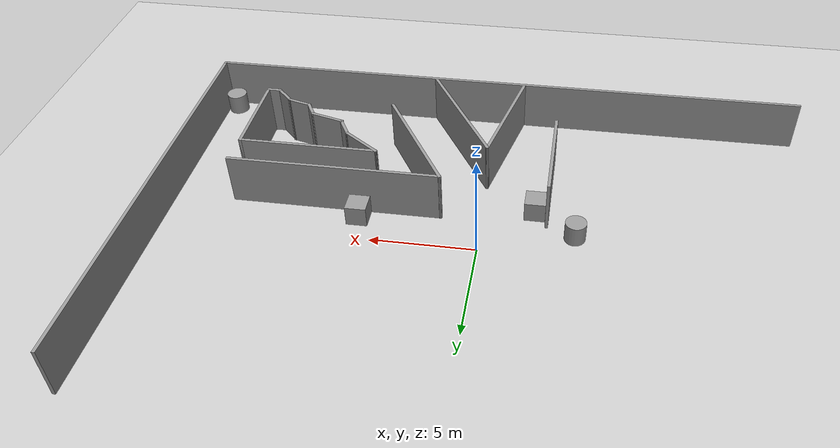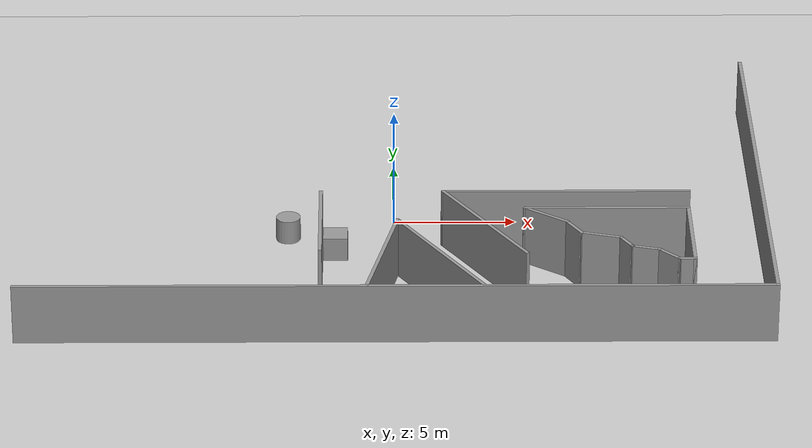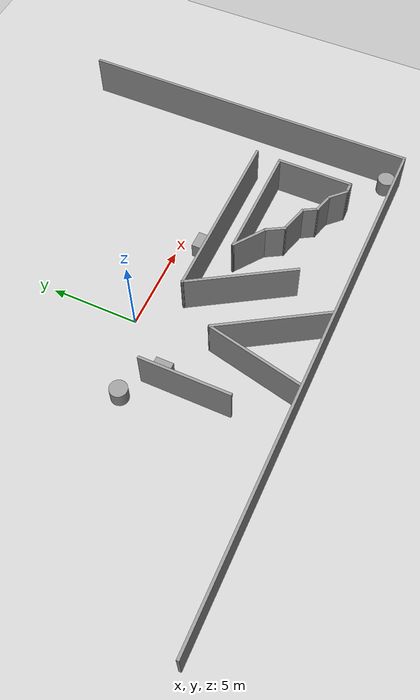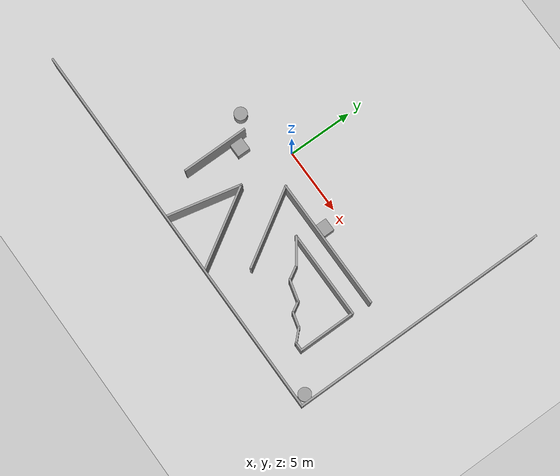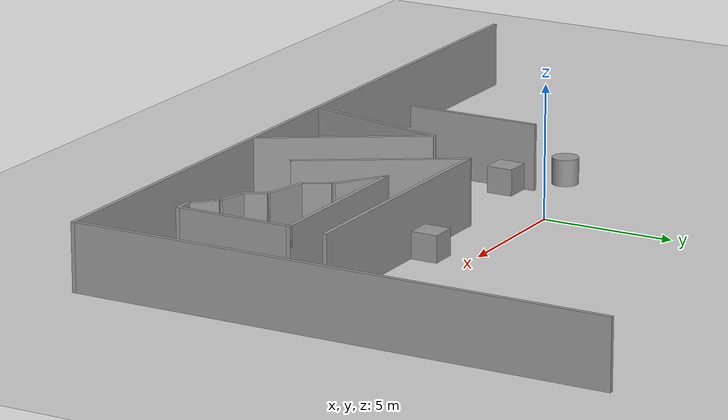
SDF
<sdf version="1.7">
 <world name="default">
  <model name="ground_plane">
   <static>1</static>
   <link name="link">
    <collision name="collision">
     <geometry><plane><normal>0 0 1</normal><size>100 100</size></plane></geometry>
     <surface>
      <contact><collide_bitmask>65535</collide_bitmask></contact>
      <friction><ode><mu>100</mu><mu2>50</mu2></ode></friction>
     </surface>
    </collision>
    <visual name="visual">
     <cast_shadows>0</cast_shadows>
     <geometry><plane><normal>0 0 1</normal><size>100 100</size></plane></geometry>
     <material>
      <script><uri>file://media/materials/scripts/gazebo.material</uri><name>Gazebo/Grey</name></script>
     </material>
    </visual>
   </link>
  </model>
  <model name="Untitled_0">
   <link name="Wall_11">
    <pose>14.9718 -0.004264 0 0 0 -1.5708</pose>
    <visual name="Wall_11_Visual">
     <pose>0 0 1.25 0 -0 0</pose>
     <geometry><box><size>20.15 0.15 2.5</size></box></geometry>
     <material>
      <script><uri>file://media/materials/scripts/gazebo.material</uri><name>Gazebo/Grey</name></script>
      <ambient>1 1 1 1</ambient>
      <shader type="pixel"/>
     </material>
     <meta><layer>0</layer></meta>
    </visual>
    <collision name="Wall_11_Collision">
     <pose>0 0 1.25 0 -0 0</pose>
     <geometry><box><size>20.15 0.15 2.5</size></box></geometry>
     <surface>
      <friction>
       <ode><mu>1</mu><mu2>1</mu2><fdir1>0 0 0</fdir1><slip1>0</slip1><slip2>0</slip2></ode>
       <torsional>
        <coefficient>1</coefficient>
        <patch_radius>0</patch_radius>
        <surface_radius>0</surface_radius>
        <use_patch_radius>1</use_patch_radius>
        <ode><slip>0</slip></ode>
       </torsional>
      </friction>
      <bounce><restitution_coefficient>0</restitution_coefficient><threshold>1e+06</threshold></bounce>
      <contact>
       <collide_without_contact>0</collide_without_contact>
       <collide_without_contact_bitmask>1</collide_without_contact_bitmask>
       <collide_bitmask>1</collide_bitmask>
       <ode>
        <soft_cfm>0</soft_cfm>
        <soft_erp>0.2</soft_erp>
        <kp>1e+13</kp>
        <kd>1</kd>
        <max_vel>0.01</max_vel>
        <min_depth>0</min_depth>
       </ode>
       <bullet>
        <split_impulse>1</split_impulse>
        <split_impulse_penetration_threshold>-0.01</split_impulse_penetration_threshold>
        <soft_cfm>0</soft_cfm>
        <soft_erp>0.2</soft_erp>
        <kp>1e+13</kp>
        <kd>1</kd>
       </bullet>
      </contact>
     </surface>
    </collision>
   </link>
   <link name="Wall_13">
    <pose>-3.02816 -4.50426 0 0 0 -1.5708</pose>
    <visual name="Wall_13_Visual">
     <pose>0 0 1.25 0 -0 0</pose>
     <geometry><box><size>5.15 0.15 2.5</size></box></geometry>
     <material>
      <script><uri>file://media/materials/scripts/gazebo.material</uri><name>Gazebo/Grey</name></script>
      <ambient>1 1 1 1</ambient>
      <shader type="pixel"/>
     </material>
     <meta><layer>0</layer></meta>
    </visual>
    <collision name="Wall_13_Collision">
     <pose>0 0 1.25 0 -0 0</pose>
     <geometry><box><size>5.15 0.15 2.5</size></box></geometry>
     <surface>
      <friction>
       <ode><mu>1</mu><mu2>1</mu2><fdir1>0 0 0</fdir1><slip1>0</slip1><slip2>0</slip2></ode>
       <torsional>
        <coefficient>1</coefficient>
        <patch_radius>0</patch_radius>
        <surface_radius>0</surface_radius>
        <use_patch_radius>1</use_patch_radius>
        <ode><slip>0</slip></ode>
       </torsional>
      </friction>
      <bounce><restitution_coefficient>0</restitution_coefficient><threshold>1e+06</threshold></bounce>
      <contact>
       <collide_without_contact>0</collide_without_contact>
       <collide_without_contact_bitmask>1</collide_without_contact_bitmask>
       <collide_bitmask>1</collide_bitmask>
       <ode>
        <soft_cfm>0</soft_cfm>
        <soft_erp>0.2</soft_erp>
        <kp>1e+13</kp>
        <kd>1</kd>
        <max_vel>0.01</max_vel>
        <min_depth>0</min_depth>
       </ode>
       <bullet>
        <split_impulse>1</split_impulse>
        <split_impulse_penetration_threshold>-0.01</split_impulse_penetration_threshold>
        <soft_cfm>0</soft_cfm>
        <soft_erp>0.2</soft_erp>
        <kp>1e+13</kp>
        <kd>1</kd>
       </bullet>
      </contact>
     </surface>
    </collision>
   </link>
   <link name="Wall_5">
    <pose>-0.028156 -10.0043 0 0 -0 0</pose>
    <visual name="Wall_5_Visual">
     <pose>0 0 1.25 0 -0 0</pose>
     <geometry><box><size>30.15 0.15 2.5</size></box></geometry>
     <material>
      <script><uri>file://media/materials/scripts/gazebo.material</uri><name>Gazebo/Grey</name></script>
      <ambient>1 1 1 1</ambient>
      <shader type="pixel"/>
     </material>
     <meta><layer>0</layer></meta>
    </visual>
    <collision name="Wall_5_Collision">
     <pose>0 0 1.25 0 -0 0</pose>
     <geometry><box><size>30.15 0.15 2.5</size></box></geometry>
     <surface>
      <friction>
       <ode><mu>1</mu><mu2>1</mu2><fdir1>0 0 0</fdir1><slip1>0</slip1><slip2>0</slip2></ode>
       <torsional>
        <coefficient>1</coefficient>
        <patch_radius>0</patch_radius>
        <surface_radius>0</surface_radius>
        <use_patch_radius>1</use_patch_radius>
        <ode><slip>0</slip></ode>
       </torsional>
      </friction>
      <bounce><restitution_coefficient>0</restitution_coefficient><threshold>1e+06</threshold></bounce>
      <contact>
       <collide_without_contact>0</collide_without_contact>
       <collide_without_contact_bitmask>1</collide_without_contact_bitmask>
       <collide_bitmask>1</collide_bitmask>
       <ode>
        <soft_cfm>0</soft_cfm>
        <soft_erp>0.2</soft_erp>
        <kp>1e+13</kp>
        <kd>1</kd>
        <max_vel>0.01</max_vel>
        <min_depth>0</min_depth>
       </ode>
       <bullet>
        <split_impulse>1</split_impulse>
        <split_impulse_penetration_threshold>-0.01</split_impulse_penetration_threshold>
        <soft_cfm>0</soft_cfm>
        <soft_erp>0.2</soft_erp>
        <kp>1e+13</kp>
        <kd>1</kd>
       </bullet>
      </contact>
     </surface>
    </collision>
   </link>
   <link name="Wall_68">
    <pose>3.59331 -4.64922 0 0 0 -1.02084</pose>
    <visual name="Wall_68_Visual">
     <pose>0 0 1.25 0 -0 0</pose>
     <geometry><box><size>6.35482 0.15 2.5</size></box></geometry>
     <material>
      <script><uri>file://media/materials/scripts/gazebo.material</uri><name>Gazebo/Grey</name></script>
      <ambient>1 1 1 1</ambient>
      <shader type="pixel"/>
     </material>
     <meta><layer>0</layer></meta>
    </visual>
    <collision name="Wall_68_Collision">
     <pose>0 0 1.25 0 -0 0</pose>
     <geometry><box><size>6.35482 0.15 2.5</size></box></geometry>
     <surface>
      <friction>
       <ode><mu>1</mu><mu2>1</mu2><fdir1>0 0 0</fdir1><slip1>0</slip1><slip2>0</slip2></ode>
       <torsional>
        <coefficient>1</coefficient>
        <patch_radius>0</patch_radius>
        <surface_radius>0</surface_radius>
        <use_patch_radius>1</use_patch_radius>
        <ode><slip>0</slip></ode>
       </torsional>
      </friction>
      <bounce><restitution_coefficient>0</restitution_coefficient><threshold>1e+06</threshold></bounce>
      <contact>
       <collide_without_contact>0</collide_without_contact>
       <collide_without_contact_bitmask>1</collide_without_contact_bitmask>
       <collide_bitmask>1</collide_bitmask>
       <ode>
        <soft_cfm>0</soft_cfm>
        <soft_erp>0.2</soft_erp>
        <kp>1e+13</kp>
        <kd>1</kd>
        <max_vel>0.01</max_vel>
        <min_depth>0</min_depth>
       </ode>
       <bullet>
        <split_impulse>1</split_impulse>
        <split_impulse_penetration_threshold>-0.01</split_impulse_penetration_threshold>
        <soft_cfm>0</soft_cfm>
        <soft_erp>0.2</soft_erp>
        <kp>1e+13</kp>
        <kd>1</kd>
       </bullet>
      </contact>
     </surface>
    </collision>
   </link>
   <link name="Wall_70">
    <pose>6.97184 -2.00426 0 0 -0 0</pose>
    <visual name="Wall_70_Visual">
     <pose>0 0 1.25 0 -0 0</pose>
     <geometry><box><size>10.15 0.15 2.5</size></box></geometry>
     <material>
      <script><uri>file://media/materials/scripts/gazebo.material</uri><name>Gazebo/Grey</name></script>
      <ambient>1 1 1 1</ambient>
      <shader type="pixel"/>
     </material>
     <meta><layer>0</layer></meta>
    </visual>
    <collision name="Wall_70_Collision">
     <pose>0 0 1.25 0 -0 0</pose>
     <geometry><box><size>10.15 0.15 2.5</size></box></geometry>
     <surface>
      <friction>
       <ode><mu>1</mu><mu2>1</mu2><fdir1>0 0 0</fdir1><slip1>0</slip1><slip2>0</slip2></ode>
       <torsional>
        <coefficient>1</coefficient>
        <patch_radius>0</patch_radius>
        <surface_radius>0</surface_radius>
        <use_patch_radius>1</use_patch_radius>
        <ode><slip>0</slip></ode>
       </torsional>
      </friction>
      <bounce><restitution_coefficient>0</restitution_coefficient><threshold>1e+06</threshold></bounce>
      <contact>
       <collide_without_contact>0</collide_without_contact>
       <collide_without_contact_bitmask>1</collide_without_contact_bitmask>
       <collide_bitmask>1</collide_bitmask>
       <ode>
        <soft_cfm>0</soft_cfm>
        <soft_erp>0.2</soft_erp>
        <kp>1e+13</kp>
        <kd>1</kd>
        <max_vel>0.01</max_vel>
        <min_depth>0</min_depth>
       </ode>
       <bullet>
        <split_impulse>1</split_impulse>
        <split_impulse_penetration_threshold>-0.01</split_impulse_penetration_threshold>
        <soft_cfm>0</soft_cfm>
        <soft_erp>0.2</soft_erp>
        <kp>1e+13</kp>
        <kd>1</kd>
       </bullet>
      </contact>
     </surface>
    </collision>
   </link>
   <link name="Wall_72">
    <pose>8.57115 -3.46947 0 0 -0 0</pose>
    <visual name="Wall_72_Visual">
     <pose>0 0 1.25 0 -0 0</pose>
     <geometry><box><size>6.75 0.15 2.5</size></box></geometry>
     <material>
      <script><uri>file://media/materials/scripts/gazebo.material</uri><name>Gazebo/Grey</name></script>
      <ambient>1 1 1 1</ambient>
      <shader type="pixel"/>
     </material>
     <meta><layer>0</layer></meta>
    </visual>
    <collision name="Wall_72_Collision">
     <pose>0 0 1.25 0 -0 0</pose>
     <geometry><box><size>6.75 0.15 2.5</size></box></geometry>
     <surface>
      <friction>
       <ode><mu>1</mu><mu2>1</mu2><fdir1>0 0 0</fdir1><slip1>0</slip1><slip2>0</slip2></ode>
       <torsional>
        <coefficient>1</coefficient>
        <patch_radius>0</patch_radius>
        <surface_radius>0</surface_radius>
        <use_patch_radius>1</use_patch_radius>
        <ode><slip>0</slip></ode>
       </torsional>
      </friction>
      <bounce><restitution_coefficient>0</restitution_coefficient><threshold>1e+06</threshold></bounce>
      <contact>
       <collide_without_contact>0</collide_without_contact>
       <collide_without_contact_bitmask>1</collide_without_contact_bitmask>
       <collide_bitmask>1</collide_bitmask>
       <ode>
        <soft_cfm>0</soft_cfm>
        <soft_erp>0.2</soft_erp>
        <kp>1e+13</kp>
        <kd>1</kd>
        <max_vel>0.01</max_vel>
        <min_depth>0</min_depth>
       </ode>
       <bullet>
        <split_impulse>1</split_impulse>
        <split_impulse_penetration_threshold>-0.01</split_impulse_penetration_threshold>
        <soft_cfm>0</soft_cfm>
        <soft_erp>0.2</soft_erp>
        <kp>1e+13</kp>
        <kd>1</kd>
       </bullet>
      </contact>
     </surface>
    </collision>
   </link>
   <link name="Wall_73">
    <pose>11.8711 -5.64447 0 0 0 -1.5708</pose>
    <visual name="Wall_73_Visual">
     <pose>0 0 1.25 0 -0 0</pose>
     <geometry><box><size>4.5 0.15 2.5</size></box></geometry>
     <material>
      <script><uri>file://media/materials/scripts/gazebo.material</uri><name>Gazebo/Grey</name></script>
      <ambient>1 1 1 1</ambient>
      <shader type="pixel"/>
     </material>
     <meta><layer>0</layer></meta>
    </visual>
    <collision name="Wall_73_Collision">
     <pose>0 0 1.25 0 -0 0</pose>
     <geometry><box><size>4.5 0.15 2.5</size></box></geometry>
     <surface>
      <friction>
       <ode><mu>1</mu><mu2>1</mu2><fdir1>0 0 0</fdir1><slip1>0</slip1><slip2>0</slip2></ode>
       <torsional>
        <coefficient>1</coefficient>
        <patch_radius>0</patch_radius>
        <surface_radius>0</surface_radius>
        <use_patch_radius>1</use_patch_radius>
        <ode><slip>0</slip></ode>
       </torsional>
      </friction>
      <bounce><restitution_coefficient>0</restitution_coefficient><threshold>1e+06</threshold></bounce>
      <contact>
       <collide_without_contact>0</collide_without_contact>
       <collide_without_contact_bitmask>1</collide_without_contact_bitmask>
       <collide_bitmask>1</collide_bitmask>
       <ode>
        <soft_cfm>0</soft_cfm>
        <soft_erp>0.2</soft_erp>
        <kp>1e+13</kp>
        <kd>1</kd>
        <max_vel>0.01</max_vel>
        <min_depth>0</min_depth>
       </ode>
       <bullet>
        <split_impulse>1</split_impulse>
        <split_impulse_penetration_threshold>-0.01</split_impulse_penetration_threshold>
        <soft_cfm>0</soft_cfm>
        <soft_erp>0.2</soft_erp>
        <kp>1e+13</kp>
        <kd>1</kd>
       </bullet>
      </contact>
     </surface>
    </collision>
   </link>
   <link name="Wall_76">
    <pose>11.5711 -7.81947 0 0 -0 3.14159</pose>
    <visual name="Wall_76_Visual">
     <pose>0 0 1.25 0 -0 0</pose>
     <geometry><box><size>0.75 0.15 2.5</size></box></geometry>
     <material>
      <script><uri>file://media/materials/scripts/gazebo.material</uri><name>Gazebo/Grey</name></script>
      <ambient>1 1 1 1</ambient>
      <shader type="pixel"/>
     </material>
     <meta><layer>0</layer></meta>
    </visual>
    <collision name="Wall_76_Collision">
     <pose>0 0 1.25 0 -0 0</pose>
     <geometry><box><size>0.75 0.15 2.5</size></box></geometry>
     <surface>
      <friction>
       <ode><mu>1</mu><mu2>1</mu2><fdir1>0 0 0</fdir1><slip1>0</slip1><slip2>0</slip2></ode>
       <torsional>
        <coefficient>1</coefficient>
        <patch_radius>0</patch_radius>
        <surface_radius>0</surface_radius>
        <use_patch_radius>1</use_patch_radius>
        <ode><slip>0</slip></ode>
       </torsional>
      </friction>
      <bounce><restitution_coefficient>0</restitution_coefficient><threshold>1e+06</threshold></bounce>
      <contact>
       <collide_without_contact>0</collide_without_contact>
       <collide_without_contact_bitmask>1</collide_without_contact_bitmask>
       <collide_bitmask>1</collide_bitmask>
       <ode>
        <soft_cfm>0</soft_cfm>
        <soft_erp>0.2</soft_erp>
        <kp>1e+13</kp>
        <kd>1</kd>
        <max_vel>0.01</max_vel>
        <min_depth>0</min_depth>
       </ode>
       <bullet>
        <split_impulse>1</split_impulse>
        <split_impulse_penetration_threshold>-0.01</split_impulse_penetration_threshold>
        <soft_cfm>0</soft_cfm>
        <soft_erp>0.2</soft_erp>
        <kp>1e+13</kp>
        <kd>1</kd>
       </bullet>
      </contact>
     </surface>
    </collision>
   </link>
   <link name="Wall_77">
    <pose>10.8822 -7.43056 0 0 -0 2.35619</pose>
    <visual name="Wall_77_Visual">
     <pose>0 0 1.25 0 -0 0</pose>
     <geometry><box><size>1.25 0.15 2.5</size></box></geometry>
     <material>
      <script><uri>file://media/materials/scripts/gazebo.material</uri><name>Gazebo/Grey</name></script>
      <ambient>1 1 1 1</ambient>
      <shader type="pixel"/>
     </material>
     <meta><layer>0</layer></meta>
    </visual>
    <collision name="Wall_77_Collision">
     <pose>0 0 1.25 0 -0 0</pose>
     <geometry><box><size>1.25 0.15 2.5</size></box></geometry>
     <surface>
      <friction>
       <ode><mu>1</mu><mu2>1</mu2><fdir1>0 0 0</fdir1><slip1>0</slip1><slip2>0</slip2></ode>
       <torsional>
        <coefficient>1</coefficient>
        <patch_radius>0</patch_radius>
        <surface_radius>0</surface_radius>
        <use_patch_radius>1</use_patch_radius>
        <ode><slip>0</slip></ode>
       </torsional>
      </friction>
      <bounce><restitution_coefficient>0</restitution_coefficient><threshold>1e+06</threshold></bounce>
      <contact>
       <collide_without_contact>0</collide_without_contact>
       <collide_without_contact_bitmask>1</collide_without_contact_bitmask>
       <collide_bitmask>1</collide_bitmask>
       <ode>
        <soft_cfm>0</soft_cfm>
        <soft_erp>0.2</soft_erp>
        <kp>1e+13</kp>
        <kd>1</kd>
        <max_vel>0.01</max_vel>
        <min_depth>0</min_depth>
       </ode>
       <bullet>
        <split_impulse>1</split_impulse>
        <split_impulse_penetration_threshold>-0.01</split_impulse_penetration_threshold>
        <soft_cfm>0</soft_cfm>
        <soft_erp>0.2</soft_erp>
        <kp>1e+13</kp>
        <kd>1</kd>
       </bullet>
      </contact>
     </surface>
    </collision>
   </link>
   <link name="Wall_78">
    <pose>9.96207 -6.8993 0 0 -0 2.87979</pose>
    <visual name="Wall_78_Visual">
     <pose>0 0 1.25 0 -0 0</pose>
     <geometry><box><size>1.25 0.15 2.5</size></box></geometry>
     <material>
      <script><uri>file://media/materials/scripts/gazebo.material</uri><name>Gazebo/Grey</name></script>
      <ambient>1 1 1 1</ambient>
      <shader type="pixel"/>
     </material>
     <meta><layer>0</layer></meta>
    </visual>
    <collision name="Wall_78_Collision">
     <pose>0 0 1.25 0 -0 0</pose>
     <geometry><box><size>1.25 0.15 2.5</size></box></geometry>
     <surface>
      <friction>
       <ode><mu>1</mu><mu2>1</mu2><fdir1>0 0 0</fdir1><slip1>0</slip1><slip2>0</slip2></ode>
       <torsional>
        <coefficient>1</coefficient>
        <patch_radius>0</patch_radius>
        <surface_radius>0</surface_radius>
        <use_patch_radius>1</use_patch_radius>
        <ode><slip>0</slip></ode>
       </torsional>
      </friction>
      <bounce><restitution_coefficient>0</restitution_coefficient><threshold>1e+06</threshold></bounce>
      <contact>
       <collide_without_contact>0</collide_without_contact>
       <collide_without_contact_bitmask>1</collide_without_contact_bitmask>
       <collide_bitmask>1</collide_bitmask>
       <ode>
        <soft_cfm>0</soft_cfm>
        <soft_erp>0.2</soft_erp>
        <kp>1e+13</kp>
        <kd>1</kd>
        <max_vel>0.01</max_vel>
        <min_depth>0</min_depth>
       </ode>
       <bullet>
        <split_impulse>1</split_impulse>
        <split_impulse_penetration_threshold>-0.01</split_impulse_penetration_threshold>
        <soft_cfm>0</soft_cfm>
        <soft_erp>0.2</soft_erp>
        <kp>1e+13</kp>
        <kd>1</kd>
       </bullet>
      </contact>
     </surface>
    </collision>
   </link>
   <link name="Wall_79">
    <pose>9.21831 -6.38889 0 0 -0 2.0944</pose>
    <visual name="Wall_79_Visual">
     <pose>0 0 1.25 0 -0 0</pose>
     <geometry><box><size>1 0.15 2.5</size></box></geometry>
     <material>
      <script><uri>file://media/materials/scripts/gazebo.material</uri><name>Gazebo/Grey</name></script>
      <ambient>1 1 1 1</ambient>
      <shader type="pixel"/>
     </material>
     <meta><layer>0</layer></meta>
    </visual>
    <collision name="Wall_79_Collision">
     <pose>0 0 1.25 0 -0 0</pose>
     <geometry><box><size>1 0.15 2.5</size></box></geometry>
     <surface>
      <friction>
       <ode><mu>1</mu><mu2>1</mu2><fdir1>0 0 0</fdir1><slip1>0</slip1><slip2>0</slip2></ode>
       <torsional>
        <coefficient>1</coefficient>
        <patch_radius>0</patch_radius>
        <surface_radius>0</surface_radius>
        <use_patch_radius>1</use_patch_radius>
        <ode><slip>0</slip></ode>
       </torsional>
      </friction>
      <bounce><restitution_coefficient>0</restitution_coefficient><threshold>1e+06</threshold></bounce>
      <contact>
       <collide_without_contact>0</collide_without_contact>
       <collide_without_contact_bitmask>1</collide_without_contact_bitmask>
       <collide_bitmask>1</collide_bitmask>
       <ode>
        <soft_cfm>0</soft_cfm>
        <soft_erp>0.2</soft_erp>
        <kp>1e+13</kp>
        <kd>1</kd>
        <max_vel>0.01</max_vel>
        <min_depth>0</min_depth>
       </ode>
       <bullet>
        <split_impulse>1</split_impulse>
        <split_impulse_penetration_threshold>-0.01</split_impulse_penetration_threshold>
        <soft_cfm>0</soft_cfm>
        <soft_erp>0.2</soft_erp>
        <kp>1e+13</kp>
        <kd>1</kd>
       </bullet>
      </contact>
     </surface>
    </collision>
   </link>
   <link name="Wall_80">
    <pose>8.23307 -5.81377 0 0 -0 2.87979</pose>
    <visual name="Wall_80_Visual">
     <pose>0 0 1.25 0 -0 0</pose>
     <geometry><box><size>1.75 0.15 2.5</size></box></geometry>
     <material>
      <script><uri>file://media/materials/scripts/gazebo.material</uri><name>Gazebo/Grey</name></script>
      <ambient>1 1 1 1</ambient>
      <shader type="pixel"/>
     </material>
     <meta><layer>0</layer></meta>
    </visual>
    <collision name="Wall_80_Collision">
     <pose>0 0 1.25 0 -0 0</pose>
     <geometry><box><size>1.75 0.15 2.5</size></box></geometry>
     <surface>
      <friction>
       <ode><mu>1</mu><mu2>1</mu2><fdir1>0 0 0</fdir1><slip1>0</slip1><slip2>0</slip2></ode>
       <torsional>
        <coefficient>1</coefficient>
        <patch_radius>0</patch_radius>
        <surface_radius>0</surface_radius>
        <use_patch_radius>1</use_patch_radius>
        <ode><slip>0</slip></ode>
       </torsional>
      </friction>
      <bounce><restitution_coefficient>0</restitution_coefficient><threshold>1e+06</threshold></bounce>
      <contact>
       <collide_without_contact>0</collide_without_contact>
       <collide_without_contact_bitmask>1</collide_without_contact_bitmask>
       <collide_bitmask>1</collide_bitmask>
       <ode>
        <soft_cfm>0</soft_cfm>
        <soft_erp>0.2</soft_erp>
        <kp>1e+13</kp>
        <kd>1</kd>
        <max_vel>0.01</max_vel>
        <min_depth>0</min_depth>
       </ode>
       <bullet>
        <split_impulse>1</split_impulse>
        <split_impulse_penetration_threshold>-0.01</split_impulse_penetration_threshold>
        <soft_cfm>0</soft_cfm>
        <soft_erp>0.2</soft_erp>
        <kp>1e+13</kp>
        <kd>1</kd>
       </bullet>
      </contact>
     </surface>
    </collision>
   </link>
   <link name="Wall_81">
    <pose>7.18533 -5.1304 0 0 -0 2.0944</pose>
    <visual name="Wall_81_Visual">
     <pose>0 0 1.25 0 -0 0</pose>
     <geometry><box><size>1.25 0.15 2.5</size></box></geometry>
     <material>
      <script><uri>file://media/materials/scripts/gazebo.material</uri><name>Gazebo/Grey</name></script>
      <ambient>1 1 1 1</ambient>
      <shader type="pixel"/>
     </material>
     <meta><layer>0</layer></meta>
    </visual>
    <collision name="Wall_81_Collision">
     <pose>0 0 1.25 0 -0 0</pose>
     <geometry><box><size>1.25 0.15 2.5</size></box></geometry>
     <surface>
      <friction>
       <ode><mu>1</mu><mu2>1</mu2><fdir1>0 0 0</fdir1><slip1>0</slip1><slip2>0</slip2></ode>
       <torsional>
        <coefficient>1</coefficient>
        <patch_radius>0</patch_radius>
        <surface_radius>0</surface_radius>
        <use_patch_radius>1</use_patch_radius>
        <ode><slip>0</slip></ode>
       </torsional>
      </friction>
      <bounce><restitution_coefficient>0</restitution_coefficient><threshold>1e+06</threshold></bounce>
      <contact>
       <collide_without_contact>0</collide_without_contact>
       <collide_without_contact_bitmask>1</collide_without_contact_bitmask>
       <collide_bitmask>1</collide_bitmask>
       <ode>
        <soft_cfm>0</soft_cfm>
        <soft_erp>0.2</soft_erp>
        <kp>1e+13</kp>
        <kd>1</kd>
        <max_vel>0.01</max_vel>
        <min_depth>0</min_depth>
       </ode>
       <bullet>
        <split_impulse>1</split_impulse>
        <split_impulse_penetration_threshold>-0.01</split_impulse_penetration_threshold>
        <soft_cfm>0</soft_cfm>
        <soft_erp>0.2</soft_erp>
        <kp>1e+13</kp>
        <kd>1</kd>
       </bullet>
      </contact>
     </surface>
    </collision>
   </link>
   <link name="Wall_84">
    <pose>6.09074 -4.06178 0 0 -0 2.5158</pose>
    <visual name="Wall_84_Visual">
     <pose>0 0 1.25 0 -0 0</pose>
     <geometry><box><size>2.17244 0.15 2.5</size></box></geometry>
     <material>
      <script><uri>file://media/materials/scripts/gazebo.material</uri><name>Gazebo/Grey</name></script>
      <ambient>1 1 1 1</ambient>
      <shader type="pixel"/>
     </material>
     <meta><layer>0</layer></meta>
    </visual>
    <collision name="Wall_84_Collision">
     <pose>0 0 1.25 0 -0 0</pose>
     <geometry><box><size>2.17244 0.15 2.5</size></box></geometry>
     <surface>
      <friction>
       <ode><mu>1</mu><mu2>1</mu2><fdir1>0 0 0</fdir1><slip1>0</slip1><slip2>0</slip2></ode>
       <torsional>
        <coefficient>1</coefficient>
        <patch_radius>0</patch_radius>
        <surface_radius>0</surface_radius>
        <use_patch_radius>1</use_patch_radius>
        <ode><slip>0</slip></ode>
       </torsional>
      </friction>
      <bounce><restitution_coefficient>0</restitution_coefficient><threshold>1e+06</threshold></bounce>
      <contact>
       <collide_without_contact>0</collide_without_contact>
       <collide_without_contact_bitmask>1</collide_without_contact_bitmask>
       <collide_bitmask>1</collide_bitmask>
       <ode>
        <soft_cfm>0</soft_cfm>
        <soft_erp>0.2</soft_erp>
        <kp>1e+13</kp>
        <kd>1</kd>
        <max_vel>0.01</max_vel>
        <min_depth>0</min_depth>
       </ode>
       <bullet>
        <split_impulse>1</split_impulse>
        <split_impulse_penetration_threshold>-0.01</split_impulse_penetration_threshold>
        <soft_cfm>0</soft_cfm>
        <soft_erp>0.2</soft_erp>
        <kp>1e+13</kp>
        <kd>1</kd>
       </bullet>
      </contact>
     </surface>
    </collision>
   </link>
   <link name="Wall_86">
    <pose>-0.547643 -7.22409 0 0 -0 1.35067</pose>
    <visual name="Wall_86_Visual">
     <pose>0 0 1.25 0 -0 0</pose>
     <geometry><box><size>5.79673 0.15 2.5</size></box></geometry>
     <material>
      <script><uri>file://media/materials/scripts/gazebo.material</uri><name>Gazebo/Grey</name></script>
      <ambient>1 1 1 1</ambient>
      <shader type="pixel"/>
     </material>
     <meta><layer>0</layer></meta>
    </visual>
    <collision name="Wall_86_Collision">
     <pose>0 0 1.25 0 -0 0</pose>
     <geometry><box><size>5.79673 0.15 2.5</size></box></geometry>
     <surface>
      <friction>
       <ode><mu>1</mu><mu2>1</mu2><fdir1>0 0 0</fdir1><slip1>0</slip1><slip2>0</slip2></ode>
       <torsional>
        <coefficient>1</coefficient>
        <patch_radius>0</patch_radius>
        <surface_radius>0</surface_radius>
        <use_patch_radius>1</use_patch_radius>
        <ode><slip>0</slip></ode>
       </torsional>
      </friction>
      <bounce><restitution_coefficient>0</restitution_coefficient><threshold>1e+06</threshold></bounce>
      <contact>
       <collide_without_contact>0</collide_without_contact>
       <collide_without_contact_bitmask>1</collide_without_contact_bitmask>
       <collide_bitmask>1</collide_bitmask>
       <ode>
        <soft_cfm>0</soft_cfm>
        <soft_erp>0.2</soft_erp>
        <kp>1e+13</kp>
        <kd>1</kd>
        <max_vel>0.01</max_vel>
        <min_depth>0</min_depth>
       </ode>
       <bullet>
        <split_impulse>1</split_impulse>
        <split_impulse_penetration_threshold>-0.01</split_impulse_penetration_threshold>
        <soft_cfm>0</soft_cfm>
        <soft_erp>0.2</soft_erp>
        <kp>1e+13</kp>
        <kd>1</kd>
       </bullet>
      </contact>
     </surface>
    </collision>
   </link>
   <link name="Wall_87">
    <pose>1.77908 -7.21848 0 0 0 -1.02024</pose>
    <visual name="Wall_87_Visual">
     <pose>0 0 1.25 0 -0 0</pose>
     <geometry><box><size>6.60277 0.15 2.5</size></box></geometry>
     <material>
      <script><uri>file://media/materials/scripts/gazebo.material</uri><name>Gazebo/Grey</name></script>
      <ambient>1 1 1 1</ambient>
      <shader type="pixel"/>
     </material>
     <meta><layer>0</layer></meta>
    </visual>
    <collision name="Wall_87_Collision">
     <pose>0 0 1.25 0 -0 0</pose>
     <geometry><box><size>6.60277 0.15 2.5</size></box></geometry>
     <surface>
      <friction>
       <ode><mu>1</mu><mu2>1</mu2><fdir1>0 0 0</fdir1><slip1>0</slip1><slip2>0</slip2></ode>
       <torsional>
        <coefficient>1</coefficient>
        <patch_radius>0</patch_radius>
        <surface_radius>0</surface_radius>
        <use_patch_radius>1</use_patch_radius>
        <ode><slip>0</slip></ode>
       </torsional>
      </friction>
      <bounce><restitution_coefficient>0</restitution_coefficient><threshold>1e+06</threshold></bounce>
      <contact>
       <collide_without_contact>0</collide_without_contact>
       <collide_without_contact_bitmask>1</collide_without_contact_bitmask>
       <collide_bitmask>1</collide_bitmask>
       <ode>
        <soft_cfm>0</soft_cfm>
        <soft_erp>0.2</soft_erp>
        <kp>1e+13</kp>
        <kd>1</kd>
        <max_vel>0.01</max_vel>
        <min_depth>0</min_depth>
       </ode>
       <bullet>
        <split_impulse>1</split_impulse>
        <split_impulse_penetration_threshold>-0.01</split_impulse_penetration_threshold>
        <soft_cfm>0</soft_cfm>
        <soft_erp>0.2</soft_erp>
        <kp>1e+13</kp>
        <kd>1</kd>
       </bullet>
      </contact>
     </surface>
    </collision>
   </link>
   <link name="link_1">
    <inertial>
     <mass>1</mass>
     <inertia><ixx>0.145833</ixx><ixy>0</ixy><ixz>0</ixz><iyy>0.145833</iyy><iyz>0</iyz><izz>0.125</izz></inertia>
    </inertial>
    <pose>-4.38476 -1.38185 0.5 0 -0 0</pose>
    <visual name="visual">
     <geometry><cylinder><radius>0.5</radius><length>1</length></cylinder></geometry>
     <material>
      <lighting>1</lighting>
      <script><uri>file://media/materials/scripts/gazebo.material</uri><name>Gazebo/Grey</name></script>
      <shader type="pixel"/>
     </material>
    </visual>
    <collision name="collision">
     <geometry><cylinder><radius>0.5</radius><length>1</length></cylinder></geometry>
     <surface>
      <friction>
       <ode><mu>1</mu><mu2>1</mu2><fdir1>0 0 0</fdir1><slip1>0</slip1><slip2>0</slip2></ode>
       <torsional>
        <coefficient>1</coefficient>
        <patch_radius>0</patch_radius>
        <surface_radius>0</surface_radius>
        <use_patch_radius>1</use_patch_radius>
        <ode><slip>0</slip></ode>
       </torsional>
      </friction>
      <bounce><restitution_coefficient>0</restitution_coefficient><threshold>1e+06</threshold></bounce>
      <contact>
       <collide_without_contact>0</collide_without_contact>
       <collide_without_contact_bitmask>1</collide_without_contact_bitmask>
       <collide_bitmask>1</collide_bitmask>
       <ode>
        <soft_cfm>0</soft_cfm>
        <soft_erp>0.2</soft_erp>
        <kp>1e+13</kp>
        <kd>1</kd>
        <max_vel>0.01</max_vel>
        <min_depth>0</min_depth>
       </ode>
       <bullet>
        <split_impulse>1</split_impulse>
        <split_impulse_penetration_threshold>-0.01</split_impulse_penetration_threshold>
        <soft_cfm>0</soft_cfm>
        <soft_erp>0.2</soft_erp>
        <kp>1e+13</kp>
        <kd>1</kd>
       </bullet>
      </contact>
     </surface>
    </collision>
   </link>
   <link name="link_22">
    <inertial>
     <mass>1</mass>
     <inertia><ixx>0.145833</ixx><ixy>0</ixy><ixz>0</ixz><iyy>0.145833</iyy><iyz>0</iyz><izz>0.125</izz></inertia>
    </inertial>
    <pose>14.3957 -9.35234 0.5 0 -0 0</pose>
    <visual name="visual">
     <geometry><cylinder><radius>0.5</radius><length>1</length></cylinder></geometry>
     <material>
      <lighting>1</lighting>
      <script><uri>file://media/materials/scripts/gazebo.material</uri><name>Gazebo/Grey</name></script>
      <shader type="pixel"/>
     </material>
    </visual>
    <collision name="collision">
     <geometry><cylinder><radius>0.5</radius><length>1</length></cylinder></geometry>
     <surface>
      <friction>
       <ode><mu>1</mu><mu2>1</mu2><fdir1>0 0 0</fdir1><slip1>0</slip1><slip2>0</slip2></ode>
       <torsional>
        <coefficient>1</coefficient>
        <patch_radius>0</patch_radius>
        <surface_radius>0</surface_radius>
        <use_patch_radius>1</use_patch_radius>
        <ode><slip>0</slip></ode>
       </torsional>
      </friction>
      <bounce><restitution_coefficient>0</restitution_coefficient><threshold>1e+06</threshold></bounce>
      <contact>
       <collide_without_contact>0</collide_without_contact>
       <collide_without_contact_bitmask>1</collide_without_contact_bitmask>
       <collide_bitmask>1</collide_bitmask>
       <ode>
        <soft_cfm>0</soft_cfm>
        <soft_erp>0.2</soft_erp>
        <kp>1e+13</kp>
        <kd>1</kd>
        <max_vel>0.01</max_vel>
        <min_depth>0</min_depth>
       </ode>
       <bullet>
        <split_impulse>1</split_impulse>
        <split_impulse_penetration_threshold>-0.01</split_impulse_penetration_threshold>
        <soft_cfm>0</soft_cfm>
        <soft_erp>0.2</soft_erp>
        <kp>1e+13</kp>
        <kd>1</kd>
       </bullet>
      </contact>
     </surface>
    </collision>
   </link>
   <link name="link_3">
    <inertial>
     <mass>1</mass>
     <inertia>
      <ixx>0.166667</ixx>
      <ixy>0</ixy>
      <ixz>0</ixz>
      <iyy>0.166667</iyy>
      <iyz>0</iyz>
      <izz>0.166667</izz>
     </inertia>
    </inertial>
    <pose>5.77452 -1.41806 0.5 0 -0 0</pose>
    <visual name="visual">
     <geometry><box><size>1 1 1</size></box></geometry>
     <material>
      <lighting>1</lighting>
      <script><uri>file://media/materials/scripts/gazebo.material</uri><name>Gazebo/Grey</name></script>
      <shader type="pixel"/>
     </material>
    </visual>
    <collision name="collision">
     <geometry><box><size>1 1 1</size></box></geometry>
     <surface>
      <friction>
       <ode><mu>1</mu><mu2>1</mu2><fdir1>0 0 0</fdir1><slip1>0</slip1><slip2>0</slip2></ode>
       <torsional>
        <coefficient>1</coefficient>
        <patch_radius>0</patch_radius>
        <surface_radius>0</surface_radius>
        <use_patch_radius>1</use_patch_radius>
        <ode><slip>0</slip></ode>
       </torsional>
      </friction>
      <bounce><restitution_coefficient>0</restitution_coefficient><threshold>1e+06</threshold></bounce>
      <contact>
       <collide_without_contact>0</collide_without_contact>
       <collide_without_contact_bitmask>1</collide_without_contact_bitmask>
       <collide_bitmask>1</collide_bitmask>
       <ode>
        <soft_cfm>0</soft_cfm>
        <soft_erp>0.2</soft_erp>
        <kp>1e+13</kp>
        <kd>1</kd>
        <max_vel>0.01</max_vel>
        <min_depth>0</min_depth>
       </ode>
       <bullet>
        <split_impulse>1</split_impulse>
        <split_impulse_penetration_threshold>-0.01</split_impulse_penetration_threshold>
        <soft_cfm>0</soft_cfm>
        <soft_erp>0.2</soft_erp>
        <kp>1e+13</kp>
        <kd>1</kd>
       </bullet>
      </contact>
     </surface>
    </collision>
   </link>
   <link name="link_5">
    <inertial>
     <mass>1</mass>
     <inertia>
      <ixx>0.166667</ixx>
      <ixy>0</ixy>
      <ixz>0</ixz>
      <iyy>0.166667</iyy>
      <iyz>0</iyz>
      <izz>0.166667</izz>
     </inertia>
    </inertial>
    <pose>-2.43724 -2.82709 0.5 0 -0 0</pose>
    <visual name="visual">
     <geometry><box><size>1 1 1</size></box></geometry>
     <material>
      <lighting>1</lighting>
      <script><uri>file://media/materials/scripts/gazebo.material</uri><name>Gazebo/Grey</name></script>
      <shader type="pixel"/>
     </material>
    </visual>
    <collision name="collision">
     <geometry><box><size>1 1 1</size></box></geometry>
     <surface>
      <friction>
       <ode><mu>1</mu><mu2>1</mu2><fdir1>0 0 0</fdir1><slip1>0</slip1><slip2>0</slip2></ode>
       <torsional>
        <coefficient>1</coefficient>
        <patch_radius>0</patch_radius>
        <surface_radius>0</surface_radius>
        <use_patch_radius>1</use_patch_radius>
        <ode><slip>0</slip></ode>
       </torsional>
      </friction>
      <bounce><restitution_coefficient>0</restitution_coefficient><threshold>1e+06</threshold></bounce>
      <contact>
       <collide_without_contact>0</collide_without_contact>
       <collide_without_contact_bitmask>1</collide_without_contact_bitmask>
       <collide_bitmask>1</collide_bitmask>
       <ode>
        <soft_cfm>0</soft_cfm>
        <soft_erp>0.2</soft_erp>
        <kp>1e+13</kp>
        <kd>1</kd>
        <max_vel>0.01</max_vel>
        <min_depth>0</min_depth>
       </ode>
       <bullet>
        <split_impulse>1</split_impulse>
        <split_impulse_penetration_threshold>-0.01</split_impulse_penetration_threshold>
        <soft_cfm>0</soft_cfm>
        <soft_erp>0.2</soft_erp>
        <kp>1e+13</kp>
        <kd>1</kd>
       </bullet>
      </contact>
     </surface>
    </collision>
   </link>
   <static>1</static>
   <pose>0.028156 0.004264 0 0 -0 0</pose>
  </model>
 </world>
</sdf>
